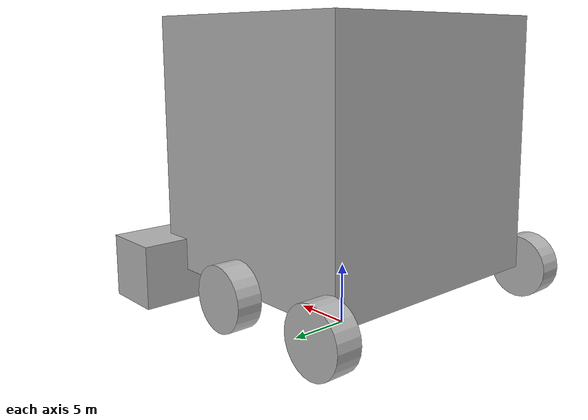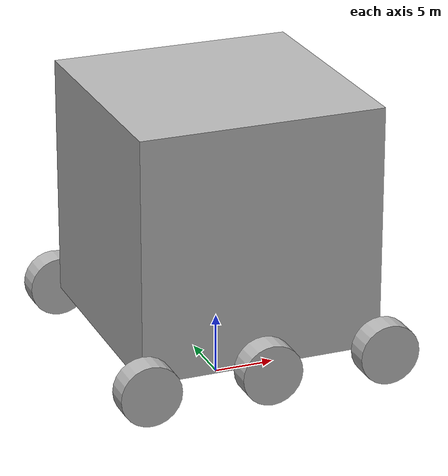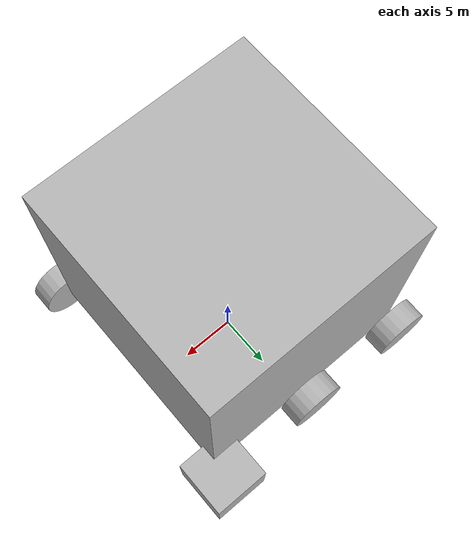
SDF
<?xml version="1.0"?>
<sdf version="1.6">
    <model name="deliverer">
        <static>false</static>

        <link name="base_link">
            <pose>0 0 0 0 0 0</pose>
            <visual name="visual">
                <pose>0 0 15 0 0 0</pose>
                <geometry><box><size>20 20 20</size></box></geometry>
            </visual>
            <collision name="collision">
                <pose>0 0 15 0 0 0</pose>
                <geometry><box><size>20 20 20</size></box></geometry>
            </collision>
        </link>

        <link name="left_front_wheel_link">
            <pose>10 10 5 1.57 0 0</pose>
            <visual name="visual">
                <pose>0 0 -1.1 0 0 0</pose>
                <geometry><box><size>5 5 5</size></box></geometry>
            </visual>
            <collision name="collision">
                <pose>0 0 -1.1 0 0 0</pose>
                <geometry><cylinder><radius>2.5</radius><length>2</length></cylinder></geometry>
            </collision>
            <inertial>
              <mass>50.0</mass>
              <inertia>
                <ixx>0.1</ixx>
                <iyy>0.1</iyy>
                <izz>0.1</izz>
              </inertia>
            </inertial>
        </link>
        <joint name="left_front_wheel_joint" type="revolute">
            <parent>base_link</parent>
            <child>left_front_wheel_link</child>
            <axis><xyz>0 1 0</xyz></axis>
        </joint>

        <link name="left_middle_wheel_link">
            <pose>0 10 5 1.57 0 0</pose>
            <visual name="visual">
                <pose>0 0 -1.1 0 0 0</pose>
                <geometry><cylinder><radius>2.5</radius><length>2</length></cylinder></geometry>
            </visual>
            <collision name="collision">
                <pose>0 0 -1.1 0 0 0</pose>
                <geometry><cylinder><radius>2.5</radius><length>2</length></cylinder></geometry>
            </collision>
        </link>
        <joint name="left_middle_wheel_joint" type="fixed">
            <parent>base_link</parent>
            <child>left_middle_wheel_link</child>
        </joint>

        <link name="left_back_wheel_link">
            <pose>-10 10 5 1.57 0 0</pose>
            <visual name="visual">
                <pose>0 0 -1.1 0 0 0</pose>
                <geometry><cylinder><radius>2.5</radius><length>2</length></cylinder></geometry>
            </visual>
            <collision name="collision">
                <pose>0 0 -1.1 0 0 0</pose>
                <geometry><cylinder><radius>2.5</radius><length>2</length></cylinder></geometry>
            </collision>
        </link>
        <joint name="left_back_wheel_joint" type="fixed">
            <parent>base_link</parent>
            <child>left_back_wheel_link</child>
        </joint>

        <link name="right_front_wheel_link">
            <pose>10 -10 5 1.57 0 0</pose>
            <visual name="visual">
                <pose>0 0 1.1 0 0 0</pose>
                <geometry><cylinder><radius>2.5</radius><length>2</length></cylinder></geometry>
            </visual>
            <collision name="collision">
                <pose>0 0 1.1 0 0 0</pose>
                <geometry><cylinder><radius>2.5</radius><length>2</length></cylinder></geometry>
            </collision>
        </link>
        <joint name="right_front_wheel_joint" type="fixed">
            <parent>base_link</parent>
            <child>right_front_wheel_link</child>
        </joint>

        <link name="right_middle_wheel_link">
            <pose>0 -10 5 1.57 0 0</pose>
            <visual name="visual">
                <pose>0 0 1.1 0 0 0</pose>
                <geometry><cylinder><radius>2.5</radius><length>2</length></cylinder></geometry>
            </visual>
            <collision name="collision">
                <pose>0 0 1.1 0 0 0</pose>
                <geometry><cylinder><radius>2.5</radius><length>2</length></cylinder></geometry>
            </collision>
        </link>
        <joint name="right_middle_wheel_joint" type="fixed">
            <parent>base_link</parent>
            <child>right_middle_wheel_link</child>
        </joint>

        <link name="right_back_wheel_link">
            <pose>-10 -10 5 1.57 0 0</pose>
            <visual name="visual">
                <pose>0 0 1.1 0 0 0</pose>
                <geometry><cylinder><radius>2.5</radius><length>2</length></cylinder></geometry>
            </visual>
            <collision name="collision">
                <pose>0 0 1.1 0 0 0</pose>
                <geometry><cylinder><radius>2.5</radius><length>2</length></cylinder></geometry>
            </collision>
        </link>
        <joint name="right_back_wheel_joint" type="fixed">
            <parent>base_link</parent>
            <child>right_back_wheel_link</child>
        </joint>

    </model>
</sdf>
